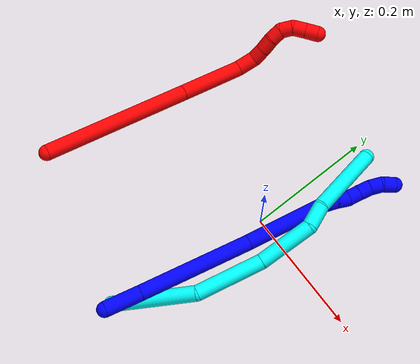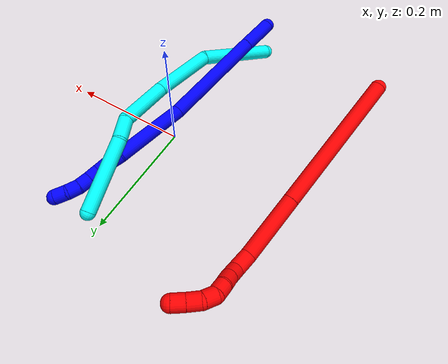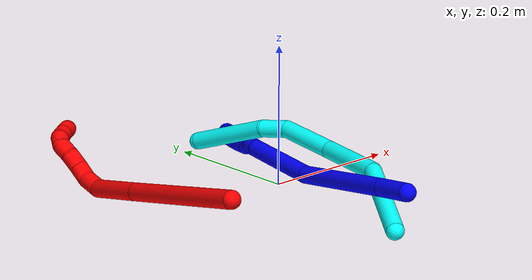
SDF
<sdf version="1.7">
 <world name="default">
  <plugin name="TubeGeneratorPlugin" filename="libtube_generator_plugin.so"/>
  <model name="photoneo_s_sensor">
   <static>1</static>
   <pose>0 0 2 1.57079 1.57079 3.14159</pose>
   <link name="link">
    <inertial><mass>0.1</mass></inertial>
    <sensor name="sensor" type="depth">
     <update_rate>30</update_rate>
     <camera>
      <horizontal_fov>1.22</horizontal_fov>
      <image><width>1920</width><height>1200</height><format>B8G8R8</format></image>
      <clip><near>0.1</near><far>4</far></clip>
      <depth_camera><output>points</output></depth_camera>
     </camera>
     <plugin name="camera_plugin" filename="libgazebo_ros_depth_camera.so">
      <baseline>0.2</baseline>
      <alwaysOn>1</alwaysOn>
      <updateRate>0.0</updateRate>
      <cameraName>camera_ir</cameraName>
      <imageTopicName>/camera/color/image_raw</imageTopicName>
      <cameraInfoTopicName>/camera/color/camera_info</cameraInfoTopicName>
      <depthImageTopicName>/camera/depth/image_raw</depthImageTopicName>
      <depthImageCameraInfoTopicName>/camera/depth/camera_info</depthImageCameraInfoTopicName>
      <pointCloudTopicName>/camera/depth/points</pointCloudTopicName>
      <frameName>fr_optical</frameName>
      <pointCloudCutoff>0.1</pointCloudCutoff>
      <pointCloudCutoffMax>2.0</pointCloudCutoffMax>
      <distortionK1>0</distortionK1>
      <distortionK2>0</distortionK2>
      <distortionK3>0</distortionK3>
      <distortionT1>0</distortionT1>
      <distortionT2>0</distortionT2>
      <CxPrime>0</CxPrime>
      <Cx>0</Cx>
      <Cy>0</Cy>
      <focalLength>0</focalLength>
      <hackBaseline>0</hackBaseline>
     </plugin>
    </sensor>
   </link>
  </model>
  <gravity>0 0 -9.8</gravity>
  <magnetic_field>6e-06 2.3e-05 -4.2e-05</magnetic_field>
  <atmosphere type="adiabatic"/>
  <physics name="default_physics" default="0" type="ode">
   <max_step_size>0.003</max_step_size>
   <real_time_factor>1</real_time_factor>
   <real_time_update_rate>1000</real_time_update_rate>
   <max_contacts>10000</max_contacts>
   <ode>
    <solver>
     <type>quick</type>
     <iters>100</iters>
     <sor>1.3</sor>
     <use_dynamic_moi_rescaling>0</use_dynamic_moi_rescaling>
    </solver>
    <constraints>
     <contact_max_correcting_vel>0</contact_max_correcting_vel>
     <contact_surface_layer>0.001</contact_surface_layer>
     <cfm>0</cfm>
     <erp>0.2</erp>
    </constraints>
   </ode>
  </physics>
  <scene><ambient>0.4 0.4 0.4 1</ambient><background>0.7 0.7 0.7 1</background><shadows>0</shadows></scene>
  <audio><device>default</device></audio>
  <spherical_coordinates>
   <surface_model>EARTH_WGS84</surface_model>
   <latitude_deg>0</latitude_deg>
   <longitude_deg>0</longitude_deg>
   <elevation>0</elevation>
   <heading_deg>0</heading_deg>
  </spherical_coordinates>
  <model name="bin">
   <static>1</static>
   <link name="bottom">
    <collision name="collision-bottom">
     <pose>0 0 -0.01 0 -0 0</pose>
     <geometry><box><size>0.8 0.6 0.02</size></box></geometry>
     <surface>
      <friction><ode><mu>100</mu><mu2>100</mu2></ode></friction>
      <contact><collide_bitmask>65535</collide_bitmask></contact>
     </surface>
    </collision>
   </link>
   <link name="west_wall">
    <collision name="collision-west_wall">
     <pose>-0.41 0 0.1 0 -0 0</pose>
     <geometry><box><size>0.02 0.6 0.2</size></box></geometry>
     <surface>
      <friction><ode><mu>100</mu><mu2>100</mu2></ode></friction>
      <contact><collide_bitmask>65535</collide_bitmask></contact>
     </surface>
    </collision>
   </link>
   <link name="east_wall">
    <collision name="collision-east_wall">
     <pose>0.41 0 0.1 0 -0 0</pose>
     <geometry><box><size>0.02 0.6 0.2</size></box></geometry>
     <surface>
      <friction><ode><mu>100</mu><mu2>100</mu2></ode></friction>
      <contact><collide_bitmask>65535</collide_bitmask></contact>
     </surface>
    </collision>
   </link>
   <link name="south_wall">
    <collision name="collision-south_wall">
     <pose>0 -0.31 0.1 0 -0 0</pose>
     <geometry><box><size>0.8 0.02 0.2</size></box></geometry>
     <surface>
      <friction><ode><mu>100</mu><mu2>100</mu2></ode></friction>
      <contact><collide_bitmask>65535</collide_bitmask></contact>
     </surface>
    </collision>
   </link>
   <link name="north_wall">
    <collision name="collision-north_wall">
     <pose>0 0.31 0.1 0 -0 0</pose>
     <geometry><box><size>0.8 0.02 0.2</size></box></geometry>
     <surface>
      <friction><ode><mu>100</mu><mu2>100</mu2></ode></friction>
      <contact><collide_bitmask>65535</collide_bitmask></contact>
     </surface>
    </collision>
   </link>
  </model>
  <model name="1">
   <static>0</static>
   <link name="1">
    <collision name="collision-cylinder-e_1_1_4">
     <pose>0.007603 0.02152 -0.018627 -2.28425 0.261039 -0.559389</pose>
     <geometry><cylinder><radius>0.0125</radius><length>0.058919</length></cylinder></geometry>
     <surface>
      <friction><ode><mu>1.16</mu><mu2>1.16</mu2><slip1>0</slip1><slip2>0</slip2></ode></friction>
      <contact><ode><kp>1e+06</kp><kd>1</kd><max_vel>0</max_vel><min_depth>0.001</min_depth></ode></contact>
     </surface>
    </collision>
    <visual name="visual-cylinder-e_1_1_4">
     <pose>0.007603 0.02152 -0.018627 -2.28425 0.261039 -0.559389</pose>
     <geometry><cylinder><radius>0.0125</radius><length>0.058919</length></cylinder></geometry>
     <material><ambient>0 0 1 1</ambient></material>
    </visual>
    <collision name="collision-cylinder-e_2_4_5">
     <pose>0.040844 0.11092 -0.096368 -2.28728 0.27748 -0.595316</pose>
     <geometry><cylinder><radius>0.0125</radius><length>0.187184</length></cylinder></geometry>
     <surface>
      <friction><ode><mu>1.16</mu><mu2>1.16</mu2><slip1>0</slip1><slip2>0</slip2></ode></friction>
      <contact><ode><kp>1e+06</kp><kd>1</kd><max_vel>0</max_vel><min_depth>0.001</min_depth></ode></contact>
     </surface>
    </collision>
    <visual name="visual-cylinder-e_2_4_5">
     <pose>0.040844 0.11092 -0.096368 -2.28728 0.27748 -0.595316</pose>
     <geometry><cylinder><radius>0.0125</radius><length>0.187184</length></cylinder></geometry>
     <material><ambient>0 0 1 1</ambient></material>
    </visual>
    <collision name="collision-cylinder-e_3_5_6">
     <pose>0.074079 0.222407 -0.204165 -2.41113 0.115713 -0.300661</pose>
     <geometry><cylinder><radius>0.0125</radius><length>0.131595</length></cylinder></geometry>
     <surface>
      <friction><ode><mu>1.16</mu><mu2>1.16</mu2><slip1>0</slip1><slip2>0</slip2></ode></friction>
      <contact><ode><kp>1e+06</kp><kd>1</kd><max_vel>0</max_vel><min_depth>0.001</min_depth></ode></contact>
     </surface>
    </collision>
    <visual name="visual-cylinder-e_3_5_6">
     <pose>0.074079 0.222407 -0.204165 -2.41113 0.115713 -0.300661</pose>
     <geometry><cylinder><radius>0.0125</radius><length>0.131595</length></cylinder></geometry>
     <material><ambient>0 0 1 1</ambient></material>
    </visual>
    <collision name="collision-cylinder-e_4_6_7">
     <pose>0.082563 0.274257 -0.25932 -2.23643 0.08449 -0.173428</pose>
     <geometry><cylinder><radius>0.0125</radius><length>0.021036</length></cylinder></geometry>
     <surface>
      <friction><ode><mu>1.16</mu><mu2>1.16</mu2><slip1>0</slip1><slip2>0</slip2></ode></friction>
      <contact><ode><kp>1e+06</kp><kd>1</kd><max_vel>0</max_vel><min_depth>0.001</min_depth></ode></contact>
     </surface>
    </collision>
    <visual name="visual-cylinder-e_4_6_7">
     <pose>0.082563 0.274257 -0.25932 -2.23643 0.08449 -0.173428</pose>
     <geometry><cylinder><radius>0.0125</radius><length>0.021036</length></cylinder></geometry>
     <material><ambient>0 0 1 1</ambient></material>
    </visual>
    <collision name="collision-cylinder-e_5_7_8">
     <pose>0.086203 0.291645 -0.270459 -2.04269 0.261978 -0.42383</pose>
     <geometry><cylinder><radius>0.0125</radius><length>0.021258</length></cylinder></geometry>
     <surface>
      <friction><ode><mu>1.16</mu><mu2>1.16</mu2><slip1>0</slip1><slip2>0</slip2></ode></friction>
      <contact><ode><kp>1e+06</kp><kd>1</kd><max_vel>0</max_vel><min_depth>0.001</min_depth></ode></contact>
     </surface>
    </collision>
    <visual name="visual-cylinder-e_5_7_8">
     <pose>0.086203 0.291645 -0.270459 -2.04269 0.261978 -0.42383</pose>
     <geometry><cylinder><radius>0.0125</radius><length>0.021258</length></cylinder></geometry>
     <material><ambient>0 0 1 1</ambient></material>
    </visual>
    <collision name="collision-cylinder-e_6_8_9">
     <pose>0.090556 0.307491 -0.282377 -2.39547 0.160591 -0.405545</pose>
     <geometry><cylinder><radius>0.0125</radius><length>0.020005</length></cylinder></geometry>
     <surface>
      <friction><ode><mu>1.16</mu><mu2>1.16</mu2><slip1>0</slip1><slip2>0</slip2></ode></friction>
      <contact><ode><kp>1e+06</kp><kd>1</kd><max_vel>0</max_vel><min_depth>0.001</min_depth></ode></contact>
     </surface>
    </collision>
    <visual name="visual-cylinder-e_6_8_9">
     <pose>0.090556 0.307491 -0.282377 -2.39547 0.160591 -0.405545</pose>
     <geometry><cylinder><radius>0.0125</radius><length>0.020005</length></cylinder></geometry>
     <material><ambient>0 0 1 1</ambient></material>
    </visual>
    <collision name="collision-cylinder-e_7_9_10">
     <pose>0.093225 0.321012 -0.296865 -2.38599 0.107231 -0.268824</pose>
     <geometry><cylinder><radius>0.0125</radius><length>0.020002</length></cylinder></geometry>
     <surface>
      <friction><ode><mu>1.16</mu><mu2>1.16</mu2><slip1>0</slip1><slip2>0</slip2></ode></friction>
      <contact><ode><kp>1e+06</kp><kd>1</kd><max_vel>0</max_vel><min_depth>0.001</min_depth></ode></contact>
     </surface>
    </collision>
    <visual name="visual-cylinder-e_7_9_10">
     <pose>0.093225 0.321012 -0.296865 -2.38599 0.107231 -0.268824</pose>
     <geometry><cylinder><radius>0.0125</radius><length>0.020002</length></cylinder></geometry>
     <material><ambient>0 0 1 1</ambient></material>
    </visual>
    <collision name="collision-cylinder-e_8_10_11">
     <pose>0.093538 0.33539 -0.310605 -2.28122 -0.075847 0.165001</pose>
     <geometry><cylinder><radius>0.0125</radius><length>0.02</length></cylinder></geometry>
     <surface>
      <friction><ode><mu>1.16</mu><mu2>1.16</mu2><slip1>0</slip1><slip2>0</slip2></ode></friction>
      <contact><ode><kp>1e+06</kp><kd>1</kd><max_vel>0</max_vel><min_depth>0.001</min_depth></ode></contact>
     </surface>
    </collision>
    <visual name="visual-cylinder-e_8_10_11">
     <pose>0.093538 0.33539 -0.310605 -2.28122 -0.075847 0.165001</pose>
     <geometry><cylinder><radius>0.0125</radius><length>0.02</length></cylinder></geometry>
     <material><ambient>0 0 1 1</ambient></material>
    </visual>
    <collision name="collision-cylinder-e_9_11_2">
     <pose>0.092412 0.352305 -0.32062 -1.92985 -0.036823 0.053145</pose>
     <geometry><cylinder><radius>0.0125</radius><length>0.02</length></cylinder></geometry>
     <surface>
      <friction><ode><mu>1.16</mu><mu2>1.16</mu2><slip1>0</slip1><slip2>0</slip2></ode></friction>
      <contact><ode><kp>1e+06</kp><kd>1</kd><max_vel>0</max_vel><min_depth>0.001</min_depth></ode></contact>
     </surface>
    </collision>
    <visual name="visual-cylinder-e_9_11_2">
     <pose>0.092412 0.352305 -0.32062 -1.92985 -0.036823 0.053145</pose>
     <geometry><cylinder><radius>0.0125</radius><length>0.02</length></cylinder></geometry>
     <material><ambient>0 0 1 1</ambient></material>
    </visual>
    <collision name="collision-sphere-2">
     <pose>0.092044 0.361661 -0.324131 0 -0 0</pose>
     <geometry><sphere><radius>0.0125</radius></sphere></geometry>
     <surface>
      <friction><ode><mu>1.16</mu><mu2>1.16</mu2><slip1>0</slip1><slip2>0</slip2></ode></friction>
      <contact><ode><kp>1e+06</kp><kd>1</kd><max_vel>0</max_vel><min_depth>0.001</min_depth></ode></contact>
     </surface>
    </collision>
    <visual name="visual-sphere-2">
     <pose>0.092044 0.361661 -0.324131 0 -0 0</pose>
     <geometry><sphere><radius>0.0125</radius></sphere></geometry>
     <material><ambient>0 0 1 1</ambient></material>
    </visual>
    <collision name="collision-sphere-11">
     <pose>0.09278 0.342949 -0.317108 0 -0 0</pose>
     <geometry><sphere><radius>0.0125</radius></sphere></geometry>
     <surface>
      <friction><ode><mu>1.16</mu><mu2>1.16</mu2><slip1>0</slip1><slip2>0</slip2></ode></friction>
      <contact><ode><kp>1e+06</kp><kd>1</kd><max_vel>0</max_vel><min_depth>0.001</min_depth></ode></contact>
     </surface>
    </collision>
    <visual name="visual-sphere-11">
     <pose>0.09278 0.342949 -0.317108 0 -0 0</pose>
     <geometry><sphere><radius>0.0125</radius></sphere></geometry>
     <material><ambient>0 0 1 1</ambient></material>
    </visual>
    <collision name="collision-sphere-10">
     <pose>0.094296 0.327831 -0.304103 0 -0 0</pose>
     <geometry><sphere><radius>0.0125</radius></sphere></geometry>
     <surface>
      <friction><ode><mu>1.16</mu><mu2>1.16</mu2><slip1>0</slip1><slip2>0</slip2></ode></friction>
      <contact><ode><kp>1e+06</kp><kd>1</kd><max_vel>0</max_vel><min_depth>0.001</min_depth></ode></contact>
     </surface>
    </collision>
    <visual name="visual-sphere-10">
     <pose>0.094296 0.327831 -0.304103 0 -0 0</pose>
     <geometry><sphere><radius>0.0125</radius></sphere></geometry>
     <material><ambient>0 0 1 1</ambient></material>
    </visual>
    <collision name="collision-sphere-9">
     <pose>0.092155 0.314194 -0.289627 0 -0 0</pose>
     <geometry><sphere><radius>0.0125</radius></sphere></geometry>
     <surface>
      <friction><ode><mu>1.16</mu><mu2>1.16</mu2><slip1>0</slip1><slip2>0</slip2></ode></friction>
      <contact><ode><kp>1e+06</kp><kd>1</kd><max_vel>0</max_vel><min_depth>0.001</min_depth></ode></contact>
     </surface>
    </collision>
    <visual name="visual-sphere-9">
     <pose>0.092155 0.314194 -0.289627 0 -0 0</pose>
     <geometry><sphere><radius>0.0125</radius></sphere></geometry>
     <material><ambient>0 0 1 1</ambient></material>
    </visual>
    <collision name="collision-sphere-4">
     <pose>0.015206 0.04304 -0.037253 0 -0 0</pose>
     <geometry><sphere><radius>0.0125</radius></sphere></geometry>
     <surface>
      <friction><ode><mu>1.16</mu><mu2>1.16</mu2><slip1>0</slip1><slip2>0</slip2></ode></friction>
      <contact><ode><kp>1e+06</kp><kd>1</kd><max_vel>0</max_vel><min_depth>0.001</min_depth></ode></contact>
     </surface>
    </collision>
    <visual name="visual-sphere-4">
     <pose>0.015206 0.04304 -0.037253 0 -0 0</pose>
     <geometry><sphere><radius>0.0125</radius></sphere></geometry>
     <material><ambient>0 0 1 1</ambient></material>
    </visual>
    <collision name="collision-sphere-1">
     <geometry><sphere><radius>0.0125</radius></sphere></geometry>
     <surface>
      <friction><ode><mu>1.16</mu><mu2>1.16</mu2><slip1>0</slip1><slip2>0</slip2></ode></friction>
      <contact><ode><kp>1e+06</kp><kd>1</kd><max_vel>0</max_vel><min_depth>0.001</min_depth></ode></contact>
     </surface>
    </collision>
    <visual name="visual-sphere-1">
     <geometry><sphere><radius>0.0125</radius></sphere></geometry>
     <material><ambient>0 0 1 1</ambient></material>
    </visual>
    <collision name="collision-sphere-8">
     <pose>0.088956 0.300789 -0.275126 0 -0 0</pose>
     <geometry><sphere><radius>0.0125</radius></sphere></geometry>
     <surface>
      <friction><ode><mu>1.16</mu><mu2>1.16</mu2><slip1>0</slip1><slip2>0</slip2></ode></friction>
      <contact><ode><kp>1e+06</kp><kd>1</kd><max_vel>0</max_vel><min_depth>0.001</min_depth></ode></contact>
     </surface>
    </collision>
    <visual name="visual-sphere-8">
     <pose>0.088956 0.300789 -0.275126 0 -0 0</pose>
     <geometry><sphere><radius>0.0125</radius></sphere></geometry>
     <material><ambient>0 0 1 1</ambient></material>
    </visual>
    <collision name="collision-sphere-5">
     <pose>0.066482 0.178799 -0.155482 0 -0 0</pose>
     <geometry><sphere><radius>0.0125</radius></sphere></geometry>
     <surface>
      <friction><ode><mu>1.16</mu><mu2>1.16</mu2><slip1>0</slip1><slip2>0</slip2></ode></friction>
      <contact><ode><kp>1e+06</kp><kd>1</kd><max_vel>0</max_vel><min_depth>0.001</min_depth></ode></contact>
     </surface>
    </collision>
    <visual name="visual-sphere-5">
     <pose>0.066482 0.178799 -0.155482 0 -0 0</pose>
     <geometry><sphere><radius>0.0125</radius></sphere></geometry>
     <material><ambient>0 0 1 1</ambient></material>
    </visual>
    <collision name="collision-sphere-6">
     <pose>0.081675 0.266014 -0.252848 0 -0 0</pose>
     <geometry><sphere><radius>0.0125</radius></sphere></geometry>
     <surface>
      <friction><ode><mu>1.16</mu><mu2>1.16</mu2><slip1>0</slip1><slip2>0</slip2></ode></friction>
      <contact><ode><kp>1e+06</kp><kd>1</kd><max_vel>0</max_vel><min_depth>0.001</min_depth></ode></contact>
     </surface>
    </collision>
    <visual name="visual-sphere-6">
     <pose>0.081675 0.266014 -0.252848 0 -0 0</pose>
     <geometry><sphere><radius>0.0125</radius></sphere></geometry>
     <material><ambient>0 0 1 1</ambient></material>
    </visual>
    <collision name="collision-sphere-7">
     <pose>0.08345 0.2825 -0.265792 0 -0 0</pose>
     <geometry><sphere><radius>0.0125</radius></sphere></geometry>
     <surface>
      <friction><ode><mu>1.16</mu><mu2>1.16</mu2><slip1>0</slip1><slip2>0</slip2></ode></friction>
      <contact><ode><kp>1e+06</kp><kd>1</kd><max_vel>0</max_vel><min_depth>0.001</min_depth></ode></contact>
     </surface>
    </collision>
    <visual name="visual-sphere-7">
     <pose>0.08345 0.2825 -0.265792 0 -0 0</pose>
     <geometry><sphere><radius>0.0125</radius></sphere></geometry>
     <material><ambient>0 0 1 1</ambient></material>
    </visual>
    <inertial>
     <pose>0.057613 0.179187 -0.162838 0 -0 0</pose>
     <mass>0.5</mass>
     <inertia>
      <ixx>0.00029</ixx>
      <ixy>0</ixy>
      <ixz>0</ixz>
      <iyy>-0.000724</iyy>
      <iyz>0</iyz>
      <izz>-0.000757</izz>
     </inertia>
    </inertial>
   </link>
   <pose>-0.031056 -0.27458 0.06545 -2.47677 0.916772 2.73374</pose>
  </model>
  <model name="2">
   <static>0</static>
   <link name="2">
    <collision name="collision-cylinder-e_1_1_4">
     <pose>-0.015855 0.099959 -0.063761 -2.1386 -0.132935 0.241648</pose>
     <geometry><cylinder><radius>0.0125</radius><length>0.239237</length></cylinder></geometry>
     <surface>
      <friction><ode><mu>1.16</mu><mu2>1.16</mu2><slip1>0</slip1><slip2>0</slip2></ode></friction>
      <contact><ode><kp>1e+06</kp><kd>1</kd><max_vel>0</max_vel><min_depth>0.001</min_depth></ode></contact>
     </surface>
    </collision>
    <visual name="visual-cylinder-e_1_1_4">
     <pose>-0.015855 0.099959 -0.063761 -2.1386 -0.132935 0.241648</pose>
     <geometry><cylinder><radius>0.0125</radius><length>0.239237</length></cylinder></geometry>
     <material><ambient>1 0 0 1</ambient></material>
    </visual>
    <collision name="collision-cylinder-e_2_4_5">
     <pose>-0.038356 0.243433 -0.155155 -2.13656 -0.12824 0.232611</pose>
     <geometry><cylinder><radius>0.0125</radius><length>0.10395</length></cylinder></geometry>
     <surface>
      <friction><ode><mu>1.16</mu><mu2>1.16</mu2><slip1>0</slip1><slip2>0</slip2></ode></friction>
      <contact><ode><kp>1e+06</kp><kd>1</kd><max_vel>0</max_vel><min_depth>0.001</min_depth></ode></contact>
     </surface>
    </collision>
    <visual name="visual-cylinder-e_2_4_5">
     <pose>-0.038356 0.243433 -0.155155 -2.13656 -0.12824 0.232611</pose>
     <geometry><cylinder><radius>0.0125</radius><length>0.10395</length></cylinder></geometry>
     <material><ambient>1 0 0 1</ambient></material>
    </visual>
    <collision name="collision-cylinder-e_3_5_6">
     <pose>-0.040915 0.300199 -0.18973 -2.05336 0.266797 -0.436525</pose>
     <geometry><cylinder><radius>0.0125</radius><length>0.031015</length></cylinder></geometry>
     <surface>
      <friction><ode><mu>1.16</mu><mu2>1.16</mu2><slip1>0</slip1><slip2>0</slip2></ode></friction>
      <contact><ode><kp>1e+06</kp><kd>1</kd><max_vel>0</max_vel><min_depth>0.001</min_depth></ode></contact>
     </surface>
    </collision>
    <visual name="visual-cylinder-e_3_5_6">
     <pose>-0.040915 0.300199 -0.18973 -2.05336 0.266797 -0.436525</pose>
     <geometry><cylinder><radius>0.0125</radius><length>0.031015</length></cylinder></geometry>
     <material><ambient>1 0 0 1</ambient></material>
    </visual>
    <collision name="collision-cylinder-e_4_6_7">
     <pose>-0.02961 0.321587 -0.198715 -1.81683 0.710353 -0.88782</pose>
     <geometry><cylinder><radius>0.0125</radius><length>0.022133</length></cylinder></geometry>
     <surface>
      <friction><ode><mu>1.16</mu><mu2>1.16</mu2><slip1>0</slip1><slip2>0</slip2></ode></friction>
      <contact><ode><kp>1e+06</kp><kd>1</kd><max_vel>0</max_vel><min_depth>0.001</min_depth></ode></contact>
     </surface>
    </collision>
    <visual name="visual-cylinder-e_4_6_7">
     <pose>-0.02961 0.321587 -0.198715 -1.81683 0.710353 -0.88782</pose>
     <geometry><cylinder><radius>0.0125</radius><length>0.022133</length></cylinder></geometry>
     <material><ambient>1 0 0 1</ambient></material>
    </visual>
    <collision name="collision-cylinder-e_5_7_8">
     <pose>-0.015034 0.338193 -0.20199 -1.71524 0.710242 -0.809981</pose>
     <geometry><cylinder><radius>0.0125</radius><length>0.022576</length></cylinder></geometry>
     <surface>
      <friction><ode><mu>1.16</mu><mu2>1.16</mu2><slip1>0</slip1><slip2>0</slip2></ode></friction>
      <contact><ode><kp>1e+06</kp><kd>1</kd><max_vel>0</max_vel><min_depth>0.001</min_depth></ode></contact>
     </surface>
    </collision>
    <visual name="visual-cylinder-e_5_7_8">
     <pose>-0.015034 0.338193 -0.20199 -1.71524 0.710242 -0.809981</pose>
     <geometry><cylinder><radius>0.0125</radius><length>0.022576</length></cylinder></geometry>
     <material><ambient>1 0 0 1</ambient></material>
    </visual>
    <collision name="collision-cylinder-e_6_8_9">
     <pose>-0.002677 0.355128 -0.2059 -1.87717 0.512669 -0.687238</pose>
     <geometry><cylinder><radius>0.0125</radius><length>0.020377</length></cylinder></geometry>
     <surface>
      <friction><ode><mu>1.16</mu><mu2>1.16</mu2><slip1>0</slip1><slip2>0</slip2></ode></friction>
      <contact><ode><kp>1e+06</kp><kd>1</kd><max_vel>0</max_vel><min_depth>0.001</min_depth></ode></contact>
     </surface>
    </collision>
    <visual name="visual-cylinder-e_6_8_9">
     <pose>-0.002677 0.355128 -0.2059 -1.87717 0.512669 -0.687238</pose>
     <geometry><cylinder><radius>0.0125</radius><length>0.020377</length></cylinder></geometry>
     <material><ambient>1 0 0 1</ambient></material>
    </visual>
    <collision name="collision-cylinder-e_7_9_10">
     <pose>0.006616 0.369368 -0.215562 -2.45064 0.442622 -1.11741</pose>
     <geometry><cylinder><radius>0.0125</radius><length>0.020059</length></cylinder></geometry>
     <surface>
      <friction><ode><mu>1.16</mu><mu2>1.16</mu2><slip1>0</slip1><slip2>0</slip2></ode></friction>
      <contact><ode><kp>1e+06</kp><kd>1</kd><max_vel>0</max_vel><min_depth>0.001</min_depth></ode></contact>
     </surface>
    </collision>
    <visual name="visual-cylinder-e_7_9_10">
     <pose>0.006616 0.369368 -0.215562 -2.45064 0.442622 -1.11741</pose>
     <geometry><cylinder><radius>0.0125</radius><length>0.020059</length></cylinder></geometry>
     <material><ambient>1 0 0 1</ambient></material>
    </visual>
    <collision name="collision-cylinder-e_8_10_11">
     <pose>0.012667 0.37791 -0.232193 -2.86229 0.173111 -1.1061</pose>
     <geometry><cylinder><radius>0.0125</radius><length>0.020377</length></cylinder></geometry>
     <surface>
      <friction><ode><mu>1.16</mu><mu2>1.16</mu2><slip1>0</slip1><slip2>0</slip2></ode></friction>
      <contact><ode><kp>1e+06</kp><kd>1</kd><max_vel>0</max_vel><min_depth>0.001</min_depth></ode></contact>
     </surface>
    </collision>
    <visual name="visual-cylinder-e_8_10_11">
     <pose>0.012667 0.37791 -0.232193 -2.86229 0.173111 -1.1061</pose>
     <geometry><cylinder><radius>0.0125</radius><length>0.020377</length></cylinder></geometry>
     <material><ambient>1 0 0 1</ambient></material>
    </visual>
    <collision name="collision-cylinder-e_9_11_2">
     <pose>0.016525 0.383008 -0.251482 -2.9044 0.208914 -1.44313</pose>
     <geometry><cylinder><radius>0.0125</radius><length>0.020278</length></cylinder></geometry>
     <surface>
      <friction><ode><mu>1.16</mu><mu2>1.16</mu2><slip1>0</slip1><slip2>0</slip2></ode></friction>
      <contact><ode><kp>1e+06</kp><kd>1</kd><max_vel>0</max_vel><min_depth>0.001</min_depth></ode></contact>
     </surface>
    </collision>
    <visual name="visual-cylinder-e_9_11_2">
     <pose>0.016525 0.383008 -0.251482 -2.9044 0.208914 -1.44313</pose>
     <geometry><cylinder><radius>0.0125</radius><length>0.020278</length></cylinder></geometry>
     <material><ambient>1 0 0 1</ambient></material>
    </visual>
    <collision name="collision-sphere-2">
     <pose>0.018628 0.385338 -0.261123 0 -0 0</pose>
     <geometry><sphere><radius>0.0125</radius></sphere></geometry>
     <surface>
      <friction><ode><mu>1.16</mu><mu2>1.16</mu2><slip1>0</slip1><slip2>0</slip2></ode></friction>
      <contact><ode><kp>1e+06</kp><kd>1</kd><max_vel>0</max_vel><min_depth>0.001</min_depth></ode></contact>
     </surface>
    </collision>
    <visual name="visual-sphere-2">
     <pose>0.018628 0.385338 -0.261123 0 -0 0</pose>
     <geometry><sphere><radius>0.0125</radius></sphere></geometry>
     <material><ambient>1 0 0 1</ambient></material>
    </visual>
    <collision name="collision-sphere-11">
     <pose>0.014422 0.380677 -0.24184 0 -0 0</pose>
     <geometry><sphere><radius>0.0125</radius></sphere></geometry>
     <surface>
      <friction><ode><mu>1.16</mu><mu2>1.16</mu2><slip1>0</slip1><slip2>0</slip2></ode></friction>
      <contact><ode><kp>1e+06</kp><kd>1</kd><max_vel>0</max_vel><min_depth>0.001</min_depth></ode></contact>
     </surface>
    </collision>
    <visual name="visual-sphere-11">
     <pose>0.014422 0.380677 -0.24184 0 -0 0</pose>
     <geometry><sphere><radius>0.0125</radius></sphere></geometry>
     <material><ambient>1 0 0 1</ambient></material>
    </visual>
    <collision name="collision-sphere-10">
     <pose>0.010912 0.375144 -0.222546 0 -0 0</pose>
     <geometry><sphere><radius>0.0125</radius></sphere></geometry>
     <surface>
      <friction><ode><mu>1.16</mu><mu2>1.16</mu2><slip1>0</slip1><slip2>0</slip2></ode></friction>
      <contact><ode><kp>1e+06</kp><kd>1</kd><max_vel>0</max_vel><min_depth>0.001</min_depth></ode></contact>
     </surface>
    </collision>
    <visual name="visual-sphere-10">
     <pose>0.010912 0.375144 -0.222546 0 -0 0</pose>
     <geometry><sphere><radius>0.0125</radius></sphere></geometry>
     <material><ambient>1 0 0 1</ambient></material>
    </visual>
    <collision name="collision-sphere-9">
     <pose>0.002321 0.363593 -0.208578 0 -0 0</pose>
     <geometry><sphere><radius>0.0125</radius></sphere></geometry>
     <surface>
      <friction><ode><mu>1.16</mu><mu2>1.16</mu2><slip1>0</slip1><slip2>0</slip2></ode></friction>
      <contact><ode><kp>1e+06</kp><kd>1</kd><max_vel>0</max_vel><min_depth>0.001</min_depth></ode></contact>
     </surface>
    </collision>
    <visual name="visual-sphere-9">
     <pose>0.002321 0.363593 -0.208578 0 -0 0</pose>
     <geometry><sphere><radius>0.0125</radius></sphere></geometry>
     <material><ambient>1 0 0 1</ambient></material>
    </visual>
    <collision name="collision-sphere-4">
     <pose>-0.031709 0.199917 -0.127522 0 -0 0</pose>
     <geometry><sphere><radius>0.0125</radius></sphere></geometry>
     <surface>
      <friction><ode><mu>1.16</mu><mu2>1.16</mu2><slip1>0</slip1><slip2>0</slip2></ode></friction>
      <contact><ode><kp>1e+06</kp><kd>1</kd><max_vel>0</max_vel><min_depth>0.001</min_depth></ode></contact>
     </surface>
    </collision>
    <visual name="visual-sphere-4">
     <pose>-0.031709 0.199917 -0.127522 0 -0 0</pose>
     <geometry><sphere><radius>0.0125</radius></sphere></geometry>
     <material><ambient>1 0 0 1</ambient></material>
    </visual>
    <collision name="collision-sphere-1">
     <geometry><sphere><radius>0.0125</radius></sphere></geometry>
     <surface>
      <friction><ode><mu>1.16</mu><mu2>1.16</mu2><slip1>0</slip1><slip2>0</slip2></ode></friction>
      <contact><ode><kp>1e+06</kp><kd>1</kd><max_vel>0</max_vel><min_depth>0.001</min_depth></ode></contact>
     </surface>
    </collision>
    <visual name="visual-sphere-1">
     <geometry><sphere><radius>0.0125</radius></sphere></geometry>
     <material><ambient>1 0 0 1</ambient></material>
    </visual>
    <collision name="collision-sphere-8">
     <pose>-0.007674 0.346663 -0.203222 0 -0 0</pose>
     <geometry><sphere><radius>0.0125</radius></sphere></geometry>
     <surface>
      <friction><ode><mu>1.16</mu><mu2>1.16</mu2><slip1>0</slip1><slip2>0</slip2></ode></friction>
      <contact><ode><kp>1e+06</kp><kd>1</kd><max_vel>0</max_vel><min_depth>0.001</min_depth></ode></contact>
     </surface>
    </collision>
    <visual name="visual-sphere-8">
     <pose>-0.007674 0.346663 -0.203222 0 -0 0</pose>
     <geometry><sphere><radius>0.0125</radius></sphere></geometry>
     <material><ambient>1 0 0 1</ambient></material>
    </visual>
    <collision name="collision-sphere-5">
     <pose>-0.045003 0.286948 -0.182788 0 -0 0</pose>
     <geometry><sphere><radius>0.0125</radius></sphere></geometry>
     <surface>
      <friction><ode><mu>1.16</mu><mu2>1.16</mu2><slip1>0</slip1><slip2>0</slip2></ode></friction>
      <contact><ode><kp>1e+06</kp><kd>1</kd><max_vel>0</max_vel><min_depth>0.001</min_depth></ode></contact>
     </surface>
    </collision>
    <visual name="visual-sphere-5">
     <pose>-0.045003 0.286948 -0.182788 0 -0 0</pose>
     <geometry><sphere><radius>0.0125</radius></sphere></geometry>
     <material><ambient>1 0 0 1</ambient></material>
    </visual>
    <collision name="collision-sphere-6">
     <pose>-0.036827 0.31345 -0.196672 0 -0 0</pose>
     <geometry><sphere><radius>0.0125</radius></sphere></geometry>
     <surface>
      <friction><ode><mu>1.16</mu><mu2>1.16</mu2><slip1>0</slip1><slip2>0</slip2></ode></friction>
      <contact><ode><kp>1e+06</kp><kd>1</kd><max_vel>0</max_vel><min_depth>0.001</min_depth></ode></contact>
     </surface>
    </collision>
    <visual name="visual-sphere-6">
     <pose>-0.036827 0.31345 -0.196672 0 -0 0</pose>
     <geometry><sphere><radius>0.0125</radius></sphere></geometry>
     <material><ambient>1 0 0 1</ambient></material>
    </visual>
    <collision name="collision-sphere-7">
     <pose>-0.022394 0.329724 -0.200758 0 -0 0</pose>
     <geometry><sphere><radius>0.0125</radius></sphere></geometry>
     <surface>
      <friction><ode><mu>1.16</mu><mu2>1.16</mu2><slip1>0</slip1><slip2>0</slip2></ode></friction>
      <contact><ode><kp>1e+06</kp><kd>1</kd><max_vel>0</max_vel><min_depth>0.001</min_depth></ode></contact>
     </surface>
    </collision>
    <visual name="visual-sphere-7">
     <pose>-0.022394 0.329724 -0.200758 0 -0 0</pose>
     <geometry><sphere><radius>0.0125</radius></sphere></geometry>
     <material><ambient>1 0 0 1</ambient></material>
    </visual>
    <inertial>
     <pose>-0.018745 0.206789 -0.129151 0 -0 0</pose>
     <mass>0.5</mass>
     <inertia>
      <ixx>0.001497</ixx>
      <ixy>0</ixy>
      <ixz>0</ixz>
      <iyy>-0.000302</iyy>
      <iyz>0</iyz>
      <izz>-0.000912</izz>
     </inertia>
    </inertial>
   </link>
   <pose>-0.270953 -0.201345 0.093151 -0.066929 -1.3876 0.447771</pose>
  </model>
  <model name="3">
   <static>0</static>
   <link name="3">
    <collision name="collision-cylinder-e_1_1_4">
     <pose>0.026259 0.035428 -0.053448 -2.55623 0.388679 -1.1572</pose>
     <geometry><cylinder><radius>0.0125</radius><length>0.138584</length></cylinder></geometry>
     <surface>
      <friction><ode><mu>1.16</mu><mu2>1.16</mu2><slip1>0</slip1><slip2>0</slip2></ode></friction>
      <contact><ode><kp>1e+06</kp><kd>1</kd><max_vel>0</max_vel><min_depth>0.001</min_depth></ode></contact>
     </surface>
    </collision>
    <visual name="visual-cylinder-e_1_1_4">
     <pose>0.026259 0.035428 -0.053448 -2.55623 0.388679 -1.1572</pose>
     <geometry><cylinder><radius>0.0125</radius><length>0.138584</length></cylinder></geometry>
     <material><ambient>0.003922 1 0.996078 1</ambient></material>
    </visual>
    <collision name="collision-cylinder-e_2_4_5">
     <pose>0.078197 0.11319 -0.129669 -2.06435 0.490623 -0.793491</pose>
     <geometry><cylinder><radius>0.0125</radius><length>0.108997</length></cylinder></geometry>
     <surface>
      <friction><ode><mu>1.16</mu><mu2>1.16</mu2><slip1>0</slip1><slip2>0</slip2></ode></friction>
      <contact><ode><kp>1e+06</kp><kd>1</kd><max_vel>0</max_vel><min_depth>0.001</min_depth></ode></contact>
     </surface>
    </collision>
    <visual name="visual-cylinder-e_2_4_5">
     <pose>0.078197 0.11319 -0.129669 -2.06435 0.490623 -0.793491</pose>
     <geometry><cylinder><radius>0.0125</radius><length>0.108997</length></cylinder></geometry>
     <material><ambient>0.003922 1 0.996078 1</ambient></material>
    </visual>
    <collision name="collision-cylinder-e_3_5_6">
     <pose>0.131884 0.187819 -0.167237 -2.00035 0.667663 -0.990785</pose>
     <geometry><cylinder><radius>0.0125</radius><length>0.090475</length></cylinder></geometry>
     <surface>
      <friction><ode><mu>1.16</mu><mu2>1.16</mu2><slip1>0</slip1><slip2>0</slip2></ode></friction>
      <contact><ode><kp>1e+06</kp><kd>1</kd><max_vel>0</max_vel><min_depth>0.001</min_depth></ode></contact>
     </surface>
    </collision>
    <visual name="visual-cylinder-e_3_5_6">
     <pose>0.131884 0.187819 -0.167237 -2.00035 0.667663 -0.990785</pose>
     <geometry><cylinder><radius>0.0125</radius><length>0.090475</length></cylinder></geometry>
     <material><ambient>0.003922 1 0.996078 1</ambient></material>
    </visual>
    <collision name="collision-cylinder-e_4_6_7">
     <pose>0.172554 0.23426 -0.179331 -1.3822 0.721218 -0.604733</pose>
     <geometry><cylinder><radius>0.0125</radius><length>0.03835</length></cylinder></geometry>
     <surface>
      <friction><ode><mu>1.16</mu><mu2>1.16</mu2><slip1>0</slip1><slip2>0</slip2></ode></friction>
      <contact><ode><kp>1e+06</kp><kd>1</kd><max_vel>0</max_vel><min_depth>0.001</min_depth></ode></contact>
     </surface>
    </collision>
    <visual name="visual-cylinder-e_4_6_7">
     <pose>0.172554 0.23426 -0.179331 -1.3822 0.721218 -0.604733</pose>
     <geometry><cylinder><radius>0.0125</radius><length>0.03835</length></cylinder></geometry>
     <material><ambient>0.003922 1 0.996078 1</ambient></material>
    </visual>
    <collision name="collision-cylinder-e_5_7_2">
     <pose>0.211661 0.304079 -0.172169 -1.49082 0.442217 -0.409169</pose>
     <geometry><cylinder><radius>0.0125</radius><length>0.123594</length></cylinder></geometry>
     <surface>
      <friction><ode><mu>1.16</mu><mu2>1.16</mu2><slip1>0</slip1><slip2>0</slip2></ode></friction>
      <contact><ode><kp>1e+06</kp><kd>1</kd><max_vel>0</max_vel><min_depth>0.001</min_depth></ode></contact>
     </surface>
    </collision>
    <visual name="visual-cylinder-e_5_7_2">
     <pose>0.211661 0.304079 -0.172169 -1.49082 0.442217 -0.409169</pose>
     <geometry><cylinder><radius>0.0125</radius><length>0.123594</length></cylinder></geometry>
     <material><ambient>0.003922 1 0.996078 1</ambient></material>
    </visual>
    <collision name="collision-sphere-2">
     <pose>0.238107 0.359753 -0.167707 0 -0 0</pose>
     <geometry><sphere><radius>0.0125</radius></sphere></geometry>
     <surface>
      <friction><ode><mu>1.16</mu><mu2>1.16</mu2><slip1>0</slip1><slip2>0</slip2></ode></friction>
      <contact><ode><kp>1e+06</kp><kd>1</kd><max_vel>0</max_vel><min_depth>0.001</min_depth></ode></contact>
     </surface>
    </collision>
    <visual name="visual-sphere-2">
     <pose>0.238107 0.359753 -0.167707 0 -0 0</pose>
     <geometry><sphere><radius>0.0125</radius></sphere></geometry>
     <material><ambient>0.003922 1 0.996078 1</ambient></material>
    </visual>
    <collision name="collision-sphere-7">
     <pose>0.185215 0.248405 -0.176632 0 -0 0</pose>
     <geometry><sphere><radius>0.0125</radius></sphere></geometry>
     <surface>
      <friction><ode><mu>1.16</mu><mu2>1.16</mu2><slip1>0</slip1><slip2>0</slip2></ode></friction>
      <contact><ode><kp>1e+06</kp><kd>1</kd><max_vel>0</max_vel><min_depth>0.001</min_depth></ode></contact>
     </surface>
    </collision>
    <visual name="visual-sphere-7">
     <pose>0.185215 0.248405 -0.176632 0 -0 0</pose>
     <geometry><sphere><radius>0.0125</radius></sphere></geometry>
     <material><ambient>0.003922 1 0.996078 1</ambient></material>
    </visual>
    <collision name="collision-sphere-6">
     <pose>0.159893 0.220115 -0.182031 0 -0 0</pose>
     <geometry><sphere><radius>0.0125</radius></sphere></geometry>
     <surface>
      <friction><ode><mu>1.16</mu><mu2>1.16</mu2><slip1>0</slip1><slip2>0</slip2></ode></friction>
      <contact><ode><kp>1e+06</kp><kd>1</kd><max_vel>0</max_vel><min_depth>0.001</min_depth></ode></contact>
     </surface>
    </collision>
    <visual name="visual-sphere-6">
     <pose>0.159893 0.220115 -0.182031 0 -0 0</pose>
     <geometry><sphere><radius>0.0125</radius></sphere></geometry>
     <material><ambient>0.003922 1 0.996078 1</ambient></material>
    </visual>
    <collision name="collision-sphere-5">
     <pose>0.103875 0.155523 -0.152442 0 -0 0</pose>
     <geometry><sphere><radius>0.0125</radius></sphere></geometry>
     <surface>
      <friction><ode><mu>1.16</mu><mu2>1.16</mu2><slip1>0</slip1><slip2>0</slip2></ode></friction>
      <contact><ode><kp>1e+06</kp><kd>1</kd><max_vel>0</max_vel><min_depth>0.001</min_depth></ode></contact>
     </surface>
    </collision>
    <visual name="visual-sphere-5">
     <pose>0.103875 0.155523 -0.152442 0 -0 0</pose>
     <geometry><sphere><radius>0.0125</radius></sphere></geometry>
     <material><ambient>0.003922 1 0.996078 1</ambient></material>
    </visual>
    <collision name="collision-sphere-1">
     <geometry><sphere><radius>0.0125</radius></sphere></geometry>
     <surface>
      <friction><ode><mu>1.16</mu><mu2>1.16</mu2><slip1>0</slip1><slip2>0</slip2></ode></friction>
      <contact><ode><kp>1e+06</kp><kd>1</kd><max_vel>0</max_vel><min_depth>0.001</min_depth></ode></contact>
     </surface>
    </collision>
    <visual name="visual-sphere-1">
     <geometry><sphere><radius>0.0125</radius></sphere></geometry>
     <material><ambient>0.003922 1 0.996078 1</ambient></material>
    </visual>
    <collision name="collision-sphere-4">
     <pose>0.052519 0.070857 -0.106896 0 -0 0</pose>
     <geometry><sphere><radius>0.0125</radius></sphere></geometry>
     <surface>
      <friction><ode><mu>1.16</mu><mu2>1.16</mu2><slip1>0</slip1><slip2>0</slip2></ode></friction>
      <contact><ode><kp>1e+06</kp><kd>1</kd><max_vel>0</max_vel><min_depth>0.001</min_depth></ode></contact>
     </surface>
    </collision>
    <visual name="visual-sphere-4">
     <pose>0.052519 0.070857 -0.106896 0 -0 0</pose>
     <geometry><sphere><radius>0.0125</radius></sphere></geometry>
     <material><ambient>0.003922 1 0.996078 1</ambient></material>
    </visual>
    <inertial>
     <pose>0.113744 0.161613 -0.129655 0 -0 0</pose>
     <mass>0.5</mass>
     <inertia>
      <ixx>-2.8e-05</ixx>
      <ixy>0</ixy>
      <ixz>0</ixz>
      <iyy>-0.000317</iyy>
      <iyz>0</iyz>
      <izz>-0.000666</izz>
     </inertia>
    </inertial>
   </link>
   <pose>-0.039085 -0.262445 0.011499 -2.20846 -0.674685 2.28829</pose>
  </model>
 </world>
</sdf>
